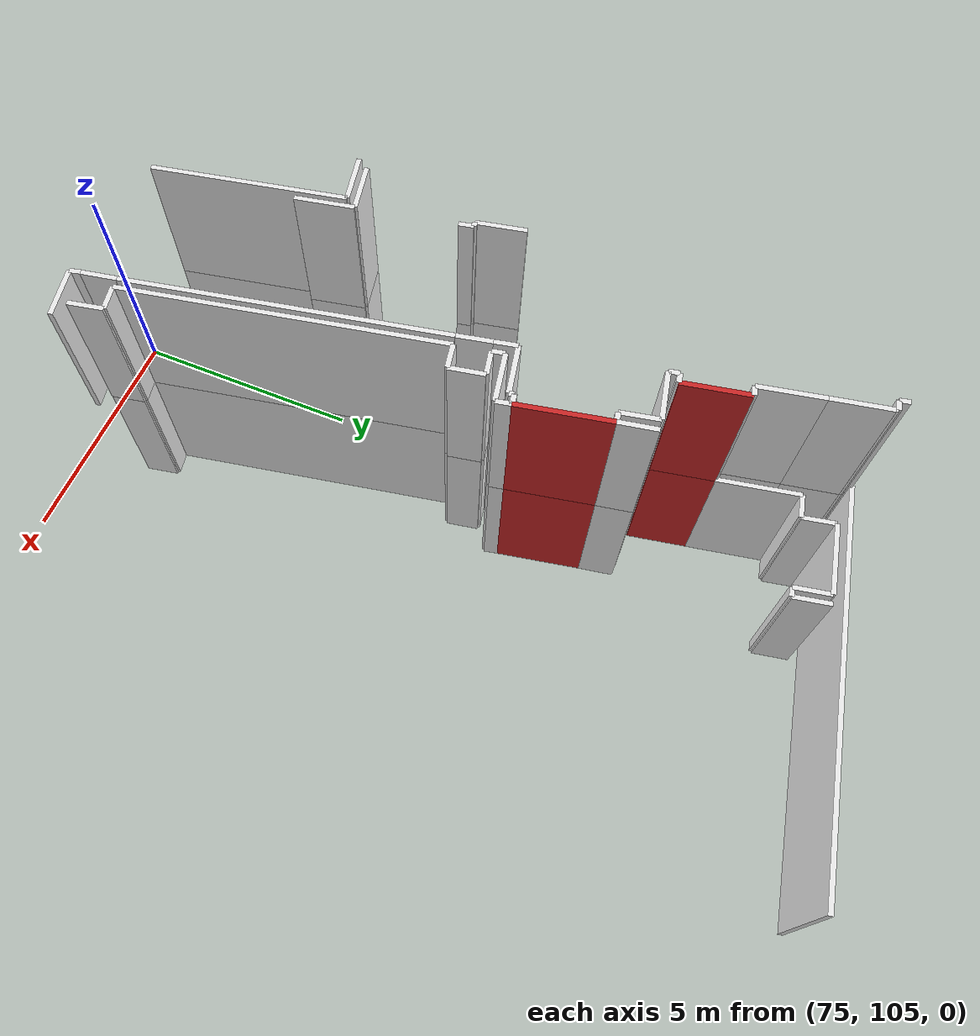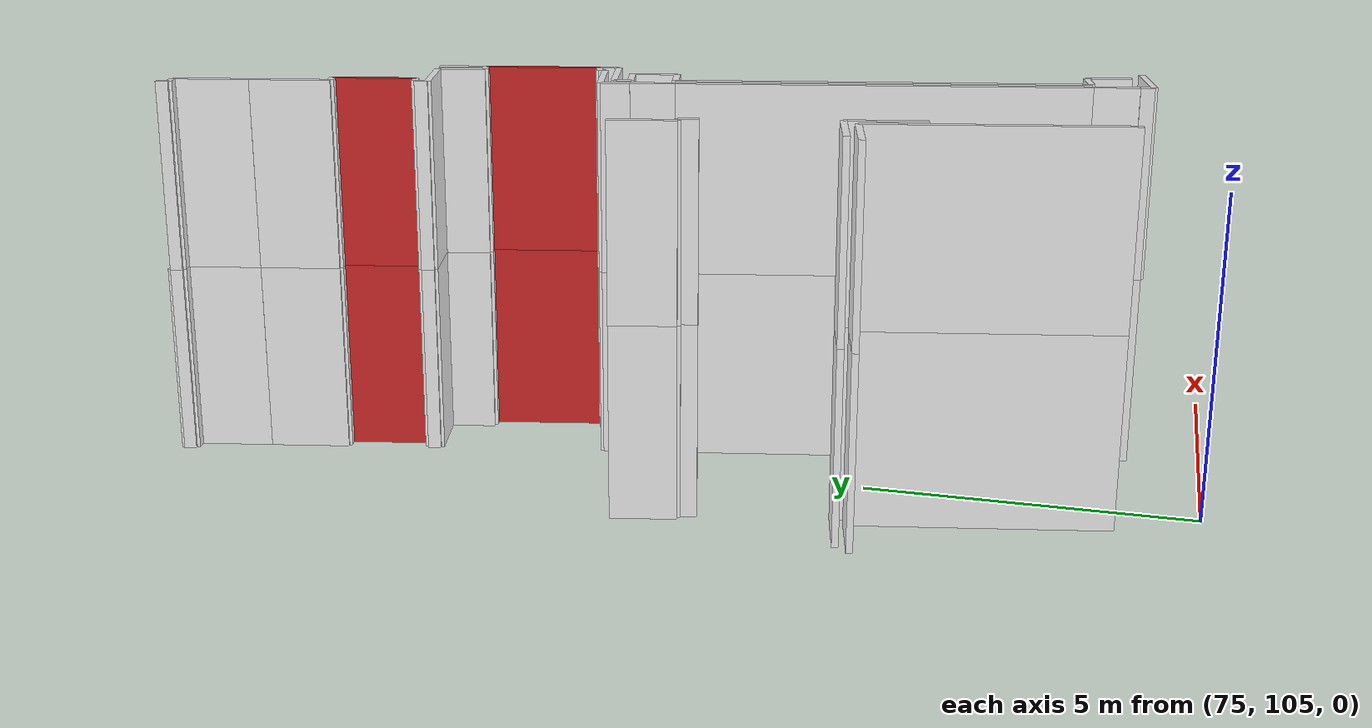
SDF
<sdf version="1.6">
 <world name="default">
  <model name="wall_76.5_115.5_1.5">
   <static>true</static>
   <pose>76.53999999997905 115.50500000012107 1.5 0 0 -1.3701434494846443</pose>
   <link name="link">
    <visual name="visual">
     <geometry><box><size>1.8062391868343128 0.1 3</size></box></geometry>
     <material>
      <script><uri>file://media/materials/scripts/gazebo.material</uri><name>Gazebo/Red</name></script>
     </material>
    </visual>
    <collision name="collision"><geometry><box><size>1.8062391868343128 0.1 3</size></box></geometry></collision>
   </link>
  </model>
  <model name="wall_75.1_117.8_1.5">
   <static>true</static>
   <pose>75.06500000000233 117.75500000012107 1.5 0 0 -1.376431060702658</pose>
   <link name="link">
    <visual name="visual">
     <geometry><box><size>1.2943724348298333 0.1 3</size></box></geometry>
     <material>
      <script><uri>file://media/materials/scripts/gazebo.material</uri><name>Gazebo/Red</name></script>
     </material>
    </visual>
    <collision name="collision"><geometry><box><size>1.2943724348298333 0.1 3</size></box></geometry></collision>
   </link>
  </model>
  <model name="wall_76.5_115.5_4.5">
   <static>true</static>
   <pose>76.53999999997905 115.50500000012107 4.5 0 0 -1.3701434494846443</pose>
   <link name="link">
    <visual name="visual">
     <geometry><box><size>1.8062391868343128 0.1 3</size></box></geometry>
     <material>
      <script><uri>file://media/materials/scripts/gazebo.material</uri><name>Gazebo/Red</name></script>
     </material>
    </visual>
    <collision name="collision"><geometry><box><size>1.8062391868343128 0.1 3</size></box></geometry></collision>
   </link>
  </model>
  <model name="wall_75.1_117.8_4.5">
   <static>true</static>
   <pose>75.06500000000233 117.75500000012107 4.5 0 0 -1.376431060702658</pose>
   <link name="link">
    <visual name="visual">
     <geometry><box><size>1.2943724348298333 0.1 3</size></box></geometry>
     <material>
      <script><uri>file://media/materials/scripts/gazebo.material</uri><name>Gazebo/Red</name></script>
     </material>
    </visual>
    <collision name="collision"><geometry><box><size>1.2943724348298333 0.1 3</size></box></geometry></collision>
   </link>
  </model>
  <model name="wall_74.0_108.2_1.5">
   <static>true</static>
   <pose>74.02999999999884 108.15500000002794 1.5 0 0 1.7676870911146996</pose>
   <link name="link">
    <visual name="visual">
     <geometry><box><size>3.8850611321253985 0.1 3</size></box></geometry>
     <material>
      <script><uri>file://media/materials/scripts/gazebo.material</uri><name>Gazebo/White</name></script>
     </material>
    </visual>
    <collision name="collision"><geometry><box><size>3.8850611321253985 0.1 3</size></box></geometry></collision>
   </link>
  </model>
  <model name="wall_73.2_110.0_1.5">
   <static>true</static>
   <pose>73.16000000000349 109.95999999996275 1.5 0 0 -2.9402755450405995</pose>
   <link name="link">
    <visual name="visual">
     <geometry><box><size>1.0001999800800263 0.1 3</size></box></geometry>
     <material>
      <script><uri>file://media/materials/scripts/gazebo.material</uri><name>Gazebo/White</name></script>
     </material>
    </visual>
    <collision name="collision"><geometry><box><size>1.0001999800800263 0.1 3</size></box></geometry></collision>
   </link>
  </model>
  <model name="wall_76.8_114.5_1.5">
   <static>true</static>
   <pose>76.75 114.47500000009313 1.5 0 0 -1.3667783470430568</pose>
   <link name="link">
    <visual name="visual">
     <geometry><box><size>0.2961418579470187 0.1 3</size></box></geometry>
     <material>
      <script><uri>file://media/materials/scripts/gazebo.material</uri><name>Gazebo/White</name></script>
     </material>
    </visual>
    <collision name="collision"><geometry><box><size>0.2961418579470187 0.1 3</size></box></geometry></collision>
   </link>
  </model>
  <model name="wall_76.3_114.2_1.5">
   <static>true</static>
   <pose>76.28500000000349 114.23500000010245 1.5 0 0 -2.9519790378789845</pose>
   <link name="link">
    <visual name="visual">
     <geometry><box><size>1.0080674580977094 0.1 3</size></box></geometry>
     <material>
      <script><uri>file://media/materials/scripts/gazebo.material</uri><name>Gazebo/White</name></script>
     </material>
    </visual>
    <collision name="collision"><geometry><box><size>1.0080674580977094 0.1 3</size></box></geometry></collision>
   </link>
  </model>
  <model name="wall_75.8_114.0_1.5">
   <static>true</static>
   <pose>75.81500000000233 114.01500000013039 1.5 0 0 -1.3734007667659154</pose>
   <link name="link">
    <visual name="visual">
     <geometry><box><size>0.2549509756887716 0.1 3</size></box></geometry>
     <material>
      <script><uri>file://media/materials/scripts/gazebo.material</uri><name>Gazebo/White</name></script>
     </material>
    </visual>
    <collision name="collision"><geometry><box><size>0.2549509756887716 0.1 3</size></box></geometry></collision>
   </link>
  </model>
  <model name="wall_76.1_113.9_1.5">
   <static>true</static>
   <pose>76.08500000002095 113.94000000017695 1.5 0 0 0.2013171085608308</pose>
   <link name="link">
    <visual name="visual">
     <geometry><box><size>0.5000999900114971 0.1 3</size></box></geometry>
     <material>
      <script><uri>file://media/materials/scripts/gazebo.material</uri><name>Gazebo/White</name></script>
     </material>
    </visual>
    <collision name="collision"><geometry><box><size>0.5000999900114971 0.1 3</size></box></geometry></collision>
   </link>
  </model>
  <model name="wall_76.4_113.7_1.5">
   <static>true</static>
   <pose>76.39500000001863 113.6500000001397 1.5 0 0 -1.3818991459561358</pose>
   <link name="link">
    <visual name="visual">
     <geometry><box><size>0.6923149573923696 0.1 3</size></box></geometry>
     <material>
      <script><uri>file://media/materials/scripts/gazebo.material</uri><name>Gazebo/White</name></script>
     </material>
    </visual>
    <collision name="collision"><geometry><box><size>0.6923149573923696 0.1 3</size></box></geometry></collision>
   </link>
  </model>
  <model name="wall_76.2_113.3_1.5">
   <static>true</static>
   <pose>76.21499999999651 113.26500000013039 1.5 0 0 -2.9599438239016918</pose>
   <link name="link">
    <visual name="visual">
     <geometry><box><size>0.4981967483044168 0.1 3</size></box></geometry>
     <material>
      <script><uri>file://media/materials/scripts/gazebo.material</uri><name>Gazebo/White</name></script>
     </material>
    </visual>
    <collision name="collision"><geometry><box><size>0.4981967483044168 0.1 3</size></box></geometry></collision>
   </link>
  </model>
  <model name="wall_76.6_110.1_1.5">
   <static>true</static>
   <pose>76.58499999999185 110.13500000000931 1.5 0 0 -1.3740242082667369</pose>
   <link name="link">
    <visual name="visual">
     <geometry><box><size>6.291406838293342 0.1 3</size></box></geometry>
     <material>
      <script><uri>file://media/materials/scripts/gazebo.material</uri><name>Gazebo/White</name></script>
     </material>
    </visual>
    <collision name="collision"><geometry><box><size>6.291406838293342 0.1 3</size></box></geometry></collision>
   </link>
  </model>
  <model name="wall_77.4_107.1_1.5">
   <static>true</static>
   <pose>77.44500000000698 107.0999999998603 1.5 0 0 0.2013171085608308</pose>
   <link name="link">
    <visual name="visual">
     <geometry><box><size>0.5000999900114971 0.1 3</size></box></geometry>
     <material>
      <script><uri>file://media/materials/scripts/gazebo.material</uri><name>Gazebo/White</name></script>
     </material>
    </visual>
    <collision name="collision"><geometry><box><size>0.5000999900114971 0.1 3</size></box></geometry></collision>
   </link>
  </model>
  <model name="wall_77.8_106.8_1.5">
   <static>true</static>
   <pose>77.76000000000931 106.81000000005588 1.5 0 0 -1.3677511094351602</pose>
   <link name="link">
    <visual name="visual">
     <geometry><box><size>0.6942621980193073 0.1 3</size></box></geometry>
     <material>
      <script><uri>file://media/materials/scripts/gazebo.material</uri><name>Gazebo/White</name></script>
     </material>
    </visual>
    <collision name="collision"><geometry><box><size>0.6942621980193073 0.1 3</size></box></geometry></collision>
   </link>
  </model>
  <model name="wall_76.3_116.8_1.5">
   <static>true</static>
   <pose>76.28999999997905 116.75500000012107 1.5 0 0 -1.3813161688905715</pose>
   <link name="link">
    <visual name="visual">
     <geometry><box><size>0.7433034373502634 0.1 3</size></box></geometry>
     <material>
      <script><uri>file://media/materials/scripts/gazebo.material</uri><name>Gazebo/White</name></script>
     </material>
    </visual>
    <collision name="collision"><geometry><box><size>0.7433034373502634 0.1 3</size></box></geometry></collision>
   </link>
  </model>
  <model name="wall_76.5_120.8_1.5">
   <static>true</static>
   <pose>76.51500000001397 120.75499999988824 1.5 0 0 -1.3734007669151658</pose>
   <link name="link">
    <visual name="visual">
     <geometry><box><size>0.764852927043484 0.1 3</size></box></geometry>
     <material>
      <script><uri>file://media/materials/scripts/gazebo.material</uri><name>Gazebo/White</name></script>
     </material>
    </visual>
    <collision name="collision"><geometry><box><size>0.764852927043484 0.1 3</size></box></geometry></collision>
   </link>
  </model>
  <model name="wall_76.7_120.4_1.5">
   <static>true</static>
   <pose>76.68500000002678 120.39999999990687 1.5 0 0 0.20749622662047904</pose>
   <link name="link">
    <visual name="visual">
     <geometry><box><size>0.19416487839942884 0.1 3</size></box></geometry>
     <material>
      <script><uri>file://media/materials/scripts/gazebo.material</uri><name>Gazebo/White</name></script>
     </material>
    </visual>
    <collision name="collision"><geometry><box><size>0.19416487839942884 0.1 3</size></box></geometry></collision>
   </link>
  </model>
  <model name="wall_76.7_120.8_1.5">
   <static>true</static>
   <pose>76.7050000000163 120.7949999999255 1.5 0 0 1.7681918866746276</pose>
   <link name="link">
    <visual name="visual">
     <geometry><box><size>0.764852927043484 0.1 3</size></box></geometry>
     <material>
      <script><uri>file://media/materials/scripts/gazebo.material</uri><name>Gazebo/White</name></script>
     </material>
    </visual>
    <collision name="collision"><geometry><box><size>0.764852927043484 0.1 3</size></box></geometry></collision>
   </link>
  </model>
  <model name="wall_74.8_119.2_1.5">
   <static>true</static>
   <pose>74.77499999999418 119.22500000009313 1.5 0 0 1.7658877432748503</pose>
   <link name="link">
    <visual name="visual">
     <geometry><box><size>1.7022925717284638 0.1 3</size></box></geometry>
     <material>
      <script><uri>file://media/materials/scripts/gazebo.material</uri><name>Gazebo/White</name></script>
     </material>
    </visual>
    <collision name="collision"><geometry><box><size>1.7022925717284638 0.1 3</size></box></geometry></collision>
   </link>
  </model>
  <model name="wall_74.9_120.1_1.5">
   <static>true</static>
   <pose>74.85499999998137 120.11000000010245 1.5 0 0 0.2013171085608308</pose>
   <link name="link">
    <visual name="visual">
     <geometry><box><size>0.5000999900114971 0.1 3</size></box></geometry>
     <material>
      <script><uri>file://media/materials/scripts/gazebo.material</uri><name>Gazebo/White</name></script>
     </material>
    </visual>
    <collision name="collision"><geometry><box><size>0.5000999900114971 0.1 3</size></box></geometry></collision>
   </link>
  </model>
  <model name="wall_75.0_120.5_1.5">
   <static>true</static>
   <pose>75.02999999999884 120.5 1.5 0 0 1.7738415440725144</pose>
   <link name="link">
    <visual name="visual">
     <geometry><box><size>0.6942621980075696 0.1 3</size></box></geometry>
     <material>
      <script><uri>file://media/materials/scripts/gazebo.material</uri><name>Gazebo/White</name></script>
     </material>
    </visual>
    <collision name="collision"><geometry><box><size>0.6942621980075696 0.1 3</size></box></geometry></collision>
   </link>
  </model>
  <model name="wall_75.7_121.0_1.5">
   <static>true</static>
   <pose>75.70000000001164 120.98499999986961 1.5 0 0 0.19349440931601616</pose>
   <link name="link">
    <visual name="visual">
     <geometry><box><size>1.508144555394632 0.1 3</size></box></geometry>
     <material>
      <script><uri>file://media/materials/scripts/gazebo.material</uri><name>Gazebo/White</name></script>
     </material>
    </visual>
    <collision name="collision"><geometry><box><size>1.508144555394632 0.1 3</size></box></geometry></collision>
   </link>
  </model>
  <model name="wall_73.9_109.7_1.5">
   <static>true</static>
   <pose>73.91500000000815 109.70999999996275 1.5 0 0 1.7665335133806872</pose>
   <link name="link">
    <visual name="visual">
     <geometry><box><size>1.1825819212062707 0.1 3</size></box></geometry>
     <material>
      <script><uri>file://media/materials/scripts/gazebo.material</uri><name>Gazebo/White</name></script>
     </material>
    </visual>
    <collision name="collision"><geometry><box><size>1.1825819212062707 0.1 3</size></box></geometry></collision>
   </link>
  </model>
  <model name="wall_73.3_110.2_1.5">
   <static>true</static>
   <pose>73.30999999999767 110.18999999994412 1.5 0 0 -2.9402755450289626</pose>
   <link name="link">
    <visual name="visual">
     <geometry><box><size>1.0001999800229942 0.1 3</size></box></geometry>
     <material>
      <script><uri>file://media/materials/scripts/gazebo.material</uri><name>Gazebo/White</name></script>
     </material>
    </visual>
    <collision name="collision"><geometry><box><size>1.0001999800229942 0.1 3</size></box></geometry></collision>
   </link>
  </model>
  <model name="wall_73.4_112.4_1.5">
   <static>true</static>
   <pose>73.37999999997555 112.39500000001863 1.5 0 0 1.7748143063542596</pose>
   <link name="link">
    <visual name="visual">
     <geometry><box><size>0.2961418579352255 0.1 3</size></box></geometry>
     <material>
      <script><uri>file://media/materials/scripts/gazebo.material</uri><name>Gazebo/White</name></script>
     </material>
    </visual>
    <collision name="collision"><geometry><box><size>0.2961418579352255 0.1 3</size></box></geometry></collision>
   </link>
  </model>
  <model name="wall_73.3_112.5_1.5">
   <static>true</static>
   <pose>73.30499999999302 112.53000000002794 1.5 0 0 -2.922923707441933</pose>
   <link name="link">
    <visual name="visual">
     <geometry><box><size>0.09219544454514944 0.1 3</size></box></geometry>
     <material>
      <script><uri>file://media/materials/scripts/gazebo.material</uri><name>Gazebo/White</name></script>
     </material>
    </visual>
    <collision name="collision"><geometry><box><size>0.09219544454514944 0.1 3</size></box></geometry></collision>
   </link>
  </model>
  <model name="wall_73.2_113.0_1.5">
   <static>true</static>
   <pose>73.16000000000349 113.01000000000931 1.5 0 0 1.7721134351846652</pose>
   <link name="link">
    <visual name="visual">
     <geometry><box><size>1.0001999799880765 0.1 3</size></box></geometry>
     <material>
      <script><uri>file://media/materials/scripts/gazebo.material</uri><name>Gazebo/White</name></script>
     </material>
    </visual>
    <collision name="collision"><geometry><box><size>1.0001999799880765 0.1 3</size></box></geometry></collision>
   </link>
  </model>
  <model name="wall_74.2_120.7_1.5">
   <static>true</static>
   <pose>74.1700000000128 120.72500000009313 1.5 0 0 0.14888994887611873</pose>
   <link name="link">
    <visual name="visual">
     <geometry><box><size>0.20223748421176238 0.1 3</size></box></geometry>
     <material>
      <script><uri>file://media/materials/scripts/gazebo.material</uri><name>Gazebo/White</name></script>
     </material>
    </visual>
    <collision name="collision"><geometry><box><size>0.20223748421176238 0.1 3</size></box></geometry></collision>
   </link>
  </model>
  <model name="wall_74.3_120.7_1.5">
   <static>true</static>
   <pose>74.27500000002328 120.72000000020489 1.5 0 0 -1.3258176636680326</pose>
   <link name="link">
    <visual name="visual">
     <geometry><box><size>0.04123105629457602 0.1 3</size></box></geometry>
     <material>
      <script><uri>file://media/materials/scripts/gazebo.material</uri><name>Gazebo/White</name></script>
     </material>
    </visual>
    <collision name="collision"><geometry><box><size>0.04123105629457602 0.1 3</size></box></geometry></collision>
   </link>
  </model>
  <model name="wall_74.4_120.1_1.5">
   <static>true</static>
   <pose>74.39000000001397 120.14000000013039 1.5 0 0 -1.3768371795778953</pose>
   <link name="link">
    <visual name="visual">
     <geometry><box><size>1.1414026459746998 0.1 3</size></box></geometry>
     <material>
      <script><uri>file://media/materials/scripts/gazebo.material</uri><name>Gazebo/White</name></script>
     </material>
    </visual>
    <collision name="collision"><geometry><box><size>1.1414026459746998 0.1 3</size></box></geometry></collision>
   </link>
  </model>
  <model name="wall_74.6_119.0_1.5">
   <static>true</static>
   <pose>74.625 118.96500000008382 1.5 0 0 -1.3702757771145264</pose>
   <link name="link">
    <visual name="visual">
     <geometry><box><size>1.2551493934803852 0.1 3</size></box></geometry>
     <material>
      <script><uri>file://media/materials/scripts/gazebo.material</uri><name>Gazebo/White</name></script>
     </material>
    </visual>
    <collision name="collision"><geometry><box><size>1.2551493934803852 0.1 3</size></box></geometry></collision>
   </link>
  </model>
  <model name="wall_74.8_118.4_1.5">
   <static>true</static>
   <pose>74.84500000000116 118.37000000011176 1.5 0 0 0.20749622662047904</pose>
   <link name="link">
    <visual name="visual">
     <geometry><box><size>0.19416487839942884 0.1 3</size></box></geometry>
     <material>
      <script><uri>file://media/materials/scripts/gazebo.material</uri><name>Gazebo/White</name></script>
     </material>
    </visual>
    <collision name="collision"><geometry><box><size>0.19416487839942884 0.1 3</size></box></geometry></collision>
   </link>
  </model>
  <model name="wall_75.1_117.1_1.5">
   <static>true</static>
   <pose>75.09500000000116 117.10000000009313 1.5 0 0 -2.9340964269693144</pose>
   <link name="link">
    <visual name="visual">
     <geometry><box><size>0.19416487839942884 0.1 3</size></box></geometry>
     <material>
      <script><uri>file://media/materials/scripts/gazebo.material</uri><name>Gazebo/White</name></script>
     </material>
    </visual>
    <collision name="collision"><geometry><box><size>0.19416487839942884 0.1 3</size></box></geometry></collision>
   </link>
  </model>
  <model name="wall_75.0_117.0_1.5">
   <static>true</static>
   <pose>75.01999999998952 116.97999999998137 1.5 0 0 -1.3734007672248605</pose>
   <link name="link">
    <visual name="visual">
     <geometry><box><size>0.2039607807222492 0.1 3</size></box></geometry>
     <material>
      <script><uri>file://media/materials/scripts/gazebo.material</uri><name>Gazebo/White</name></script>
     </material>
    </visual>
    <collision name="collision"><geometry><box><size>0.2039607807222492 0.1 3</size></box></geometry></collision>
   </link>
  </model>
  <model name="wall_75.5_117.0_1.5">
   <static>true</static>
   <pose>75.52999999999884 116.97999999998137 1.5 0 0 0.20131710854919393</pose>
   <link name="link">
    <visual name="visual">
     <geometry><box><size>1.0001999800800263 0.1 3</size></box></geometry>
     <material>
      <script><uri>file://media/materials/scripts/gazebo.material</uri><name>Gazebo/White</name></script>
     </material>
    </visual>
    <collision name="collision"><geometry><box><size>1.0001999800800263 0.1 3</size></box></geometry></collision>
   </link>
  </model>
  <model name="wall_76.1_116.7_1.5">
   <static>true</static>
   <pose>76.09500000000116 116.71500000008382 1.5 0 0 -1.3681376576882938</pose>
   <link name="link">
    <visual name="visual">
     <geometry><box><size>0.7452516353301937 0.1 3</size></box></geometry>
     <material>
      <script><uri>file://media/materials/scripts/gazebo.material</uri><name>Gazebo/White</name></script>
     </material>
    </visual>
    <collision name="collision"><geometry><box><size>0.7452516353301937 0.1 3</size></box></geometry></collision>
   </link>
  </model>
  <model name="wall_76.3_116.4_1.5">
   <static>true</static>
   <pose>76.26499999998487 116.37000000011176 1.5 0 0 0.20749622662047904</pose>
   <link name="link">
    <visual name="visual">
     <geometry><box><size>0.19416487839942884 0.1 3</size></box></geometry>
     <material>
      <script><uri>file://media/materials/scripts/gazebo.material</uri><name>Gazebo/White</name></script>
     </material>
    </visual>
    <collision name="collision"><geometry><box><size>0.19416487839942884 0.1 3</size></box></geometry></collision>
   </link>
  </model>
  <model name="wall_76.6_114.6_1.5">
   <static>true</static>
   <pose>76.61999999999534 114.60499999998137 1.5 0 0 -2.9927027046709793</pose>
   <link name="link">
    <visual name="visual">
     <geometry><box><size>0.20223748415419868 0.1 3</size></box></geometry>
     <material>
      <script><uri>file://media/materials/scripts/gazebo.material</uri><name>Gazebo/White</name></script>
     </material>
    </visual>
    <collision name="collision"><geometry><box><size>0.20223748415419868 0.1 3</size></box></geometry></collision>
   </link>
  </model>
  <model name="wall_76.5_114.5_1.5">
   <static>true</static>
   <pose>76.52999999999884 114.54000000003725 1.5 0 0 -1.3734007666092025</pose>
   <link name="link">
    <visual name="visual">
     <geometry><box><size>0.10198038989879842 0.1 3</size></box></geometry>
     <material>
      <script><uri>file://media/materials/scripts/gazebo.material</uri><name>Gazebo/White</name></script>
     </material>
    </visual>
    <collision name="collision"><geometry><box><size>0.10198038989879842 0.1 3</size></box></geometry></collision>
   </link>
  </model>
  <model name="wall_76.0_114.4_1.5">
   <static>true</static>
   <pose>76.0449999999837 114.39000000013039 1.5 0 0 -2.942255348424875</pose>
   <link name="link">
    <visual name="visual">
     <geometry><box><size>1.0100000000277551 0.1 3</size></box></geometry>
     <material>
      <script><uri>file://media/materials/scripts/gazebo.material</uri><name>Gazebo/White</name></script>
     </material>
    </visual>
    <collision name="collision"><geometry><box><size>1.0100000000277551 0.1 3</size></box></geometry></collision>
   </link>
  </model>
  <model name="wall_75.6_114.1_1.5">
   <static>true</static>
   <pose>75.59500000000116 114.07000000006519 1.5 0 0 -1.3690339823938056</pose>
   <link name="link">
    <visual name="visual">
     <geometry><box><size>0.44911023140809897 0.1 3</size></box></geometry>
     <material>
      <script><uri>file://media/materials/scripts/gazebo.material</uri><name>Gazebo/White</name></script>
     </material>
    </visual>
    <collision name="collision"><geometry><box><size>0.44911023140809897 0.1 3</size></box></geometry></collision>
   </link>
  </model>
  <model name="wall_75.7_113.5_1.5">
   <static>true</static>
   <pose>75.71000000002095 113.51500000013039 1.5 0 0 -1.3648049900768227</pose>
   <link name="link">
    <visual name="visual">
     <geometry><box><size>0.6844705982758308 0.1 3</size></box></geometry>
     <material>
      <script><uri>file://media/materials/scripts/gazebo.material</uri><name>Gazebo/White</name></script>
     </material>
    </visual>
    <collision name="collision"><geometry><box><size>0.6844705982758308 0.1 3</size></box></geometry></collision>
   </link>
  </model>
  <model name="wall_76.4_110.1_1.5">
   <static>true</static>
   <pose>76.39500000001863 110.10000000009313 1.5 0 0 -1.3737129742480756</pose>
   <link name="link">
    <visual name="visual">
     <geometry><box><size>6.281600114762957 0.1 3</size></box></geometry>
     <material>
      <script><uri>file://media/materials/scripts/gazebo.material</uri><name>Gazebo/White</name></script>
     </material>
    </visual>
    <collision name="collision"><geometry><box><size>6.281600114762957 0.1 3</size></box></geometry></collision>
   </link>
  </model>
  <model name="wall_77.1_106.7_1.5">
   <static>true</static>
   <pose>77.07500000001164 106.67999999993481 1.5 0 0 -1.3818991459561358</pose>
   <link name="link">
    <visual name="visual">
     <geometry><box><size>0.6923149573923696 0.1 3</size></box></geometry>
     <material>
      <script><uri>file://media/materials/scripts/gazebo.material</uri><name>Gazebo/White</name></script>
     </material>
    </visual>
    <collision name="collision"><geometry><box><size>0.6923149573923696 0.1 3</size></box></geometry></collision>
   </link>
  </model>
  <model name="wall_77.2_106.2_1.5">
   <static>true</static>
   <pose>77.16500000000815 106.23499999986961 1.5 0 0 -1.337053145938486</pose>
   <link name="link">
    <visual name="visual">
     <geometry><box><size>0.21587033141029277 0.1 3</size></box></geometry>
     <material>
      <script><uri>file://media/materials/scripts/gazebo.material</uri><name>Gazebo/White</name></script>
     </material>
    </visual>
    <collision name="collision"><geometry><box><size>0.21587033141029277 0.1 3</size></box></geometry></collision>
   </link>
  </model>
  <model name="wall_78.0_121.7_1.5">
   <static>true</static>
   <pose>78.03500000000349 121.68999999994412 1.5 0 0 -2.9468394128265745</pose>
   <link name="link">
    <visual name="visual">
     <geometry><box><size>8.164343206863132 0.1 3</size></box></geometry>
     <material>
      <script><uri>file://media/materials/scripts/gazebo.material</uri><name>Gazebo/White</name></script>
     </material>
    </visual>
    <collision name="collision"><geometry><box><size>8.164343206863132 0.1 3</size></box></geometry></collision>
   </link>
  </model>
  <model name="wall_74.1_120.8_1.5">
   <static>true</static>
   <pose>74.05000000001746 120.80499999993481 1.5 0 0 -1.363300100406013</pose>
   <link name="link">
    <visual name="visual">
     <geometry><box><size>0.19416487833047835 0.1 3</size></box></geometry>
     <material>
      <script><uri>file://media/materials/scripts/gazebo.material</uri><name>Gazebo/White</name></script>
     </material>
    </visual>
    <collision name="collision"><geometry><box><size>0.19416487833047835 0.1 3</size></box></geometry></collision>
   </link>
  </model>
  <model name="wall_74.0_108.2_4.5">
   <static>true</static>
   <pose>74.02999999999884 108.15500000002794 4.5 0 0 1.7676870911146996</pose>
   <link name="link">
    <visual name="visual">
     <geometry><box><size>3.8850611321253985 0.1 3</size></box></geometry>
     <material>
      <script><uri>file://media/materials/scripts/gazebo.material</uri><name>Gazebo/White</name></script>
     </material>
    </visual>
    <collision name="collision"><geometry><box><size>3.8850611321253985 0.1 3</size></box></geometry></collision>
   </link>
  </model>
  <model name="wall_73.2_110.0_4.5">
   <static>true</static>
   <pose>73.16000000000349 109.95999999996275 4.5 0 0 -2.9402755450405995</pose>
   <link name="link">
    <visual name="visual">
     <geometry><box><size>1.0001999800800263 0.1 3</size></box></geometry>
     <material>
      <script><uri>file://media/materials/scripts/gazebo.material</uri><name>Gazebo/White</name></script>
     </material>
    </visual>
    <collision name="collision"><geometry><box><size>1.0001999800800263 0.1 3</size></box></geometry></collision>
   </link>
  </model>
  <model name="wall_76.8_114.5_4.5">
   <static>true</static>
   <pose>76.75 114.47500000009313 4.5 0 0 -1.3667783470430568</pose>
   <link name="link">
    <visual name="visual">
     <geometry><box><size>0.2961418579470187 0.1 3</size></box></geometry>
     <material>
      <script><uri>file://media/materials/scripts/gazebo.material</uri><name>Gazebo/White</name></script>
     </material>
    </visual>
    <collision name="collision"><geometry><box><size>0.2961418579470187 0.1 3</size></box></geometry></collision>
   </link>
  </model>
  <model name="wall_76.3_114.2_4.5">
   <static>true</static>
   <pose>76.28500000000349 114.23500000010245 4.5 0 0 -2.9519790378789845</pose>
   <link name="link">
    <visual name="visual">
     <geometry><box><size>1.0080674580977094 0.1 3</size></box></geometry>
     <material>
      <script><uri>file://media/materials/scripts/gazebo.material</uri><name>Gazebo/White</name></script>
     </material>
    </visual>
    <collision name="collision"><geometry><box><size>1.0080674580977094 0.1 3</size></box></geometry></collision>
   </link>
  </model>
  <model name="wall_75.8_114.0_4.5">
   <static>true</static>
   <pose>75.81500000000233 114.01500000013039 4.5 0 0 -1.3734007667659154</pose>
   <link name="link">
    <visual name="visual">
     <geometry><box><size>0.2549509756887716 0.1 3</size></box></geometry>
     <material>
      <script><uri>file://media/materials/scripts/gazebo.material</uri><name>Gazebo/White</name></script>
     </material>
    </visual>
    <collision name="collision"><geometry><box><size>0.2549509756887716 0.1 3</size></box></geometry></collision>
   </link>
  </model>
  <model name="wall_76.1_113.9_4.5">
   <static>true</static>
   <pose>76.08500000002095 113.94000000017695 4.5 0 0 0.2013171085608308</pose>
   <link name="link">
    <visual name="visual">
     <geometry><box><size>0.5000999900114971 0.1 3</size></box></geometry>
     <material>
      <script><uri>file://media/materials/scripts/gazebo.material</uri><name>Gazebo/White</name></script>
     </material>
    </visual>
    <collision name="collision"><geometry><box><size>0.5000999900114971 0.1 3</size></box></geometry></collision>
   </link>
  </model>
  <model name="wall_76.4_113.7_4.5">
   <static>true</static>
   <pose>76.39500000001863 113.6500000001397 4.5 0 0 -1.3818991459561358</pose>
   <link name="link">
    <visual name="visual">
     <geometry><box><size>0.6923149573923696 0.1 3</size></box></geometry>
     <material>
      <script><uri>file://media/materials/scripts/gazebo.material</uri><name>Gazebo/White</name></script>
     </material>
    </visual>
    <collision name="collision"><geometry><box><size>0.6923149573923696 0.1 3</size></box></geometry></collision>
   </link>
  </model>
  <model name="wall_76.2_113.3_4.5">
   <static>true</static>
   <pose>76.21499999999651 113.26500000013039 4.5 0 0 -2.9599438239016918</pose>
   <link name="link">
    <visual name="visual">
     <geometry><box><size>0.4981967483044168 0.1 3</size></box></geometry>
     <material>
      <script><uri>file://media/materials/scripts/gazebo.material</uri><name>Gazebo/White</name></script>
     </material>
    </visual>
    <collision name="collision"><geometry><box><size>0.4981967483044168 0.1 3</size></box></geometry></collision>
   </link>
  </model>
  <model name="wall_76.6_110.1_4.5">
   <static>true</static>
   <pose>76.58499999999185 110.13500000000931 4.5 0 0 -1.3740242082667369</pose>
   <link name="link">
    <visual name="visual">
     <geometry><box><size>6.291406838293342 0.1 3</size></box></geometry>
     <material>
      <script><uri>file://media/materials/scripts/gazebo.material</uri><name>Gazebo/White</name></script>
     </material>
    </visual>
    <collision name="collision"><geometry><box><size>6.291406838293342 0.1 3</size></box></geometry></collision>
   </link>
  </model>
  <model name="wall_77.4_107.1_4.5">
   <static>true</static>
   <pose>77.44500000000698 107.0999999998603 4.5 0 0 0.2013171085608308</pose>
   <link name="link">
    <visual name="visual">
     <geometry><box><size>0.5000999900114971 0.1 3</size></box></geometry>
     <material>
      <script><uri>file://media/materials/scripts/gazebo.material</uri><name>Gazebo/White</name></script>
     </material>
    </visual>
    <collision name="collision"><geometry><box><size>0.5000999900114971 0.1 3</size></box></geometry></collision>
   </link>
  </model>
  <model name="wall_77.8_106.8_4.5">
   <static>true</static>
   <pose>77.76000000000931 106.81000000005588 4.5 0 0 -1.3677511094351602</pose>
   <link name="link">
    <visual name="visual">
     <geometry><box><size>0.6942621980193073 0.1 3</size></box></geometry>
     <material>
      <script><uri>file://media/materials/scripts/gazebo.material</uri><name>Gazebo/White</name></script>
     </material>
    </visual>
    <collision name="collision"><geometry><box><size>0.6942621980193073 0.1 3</size></box></geometry></collision>
   </link>
  </model>
  <model name="wall_76.3_116.8_4.5">
   <static>true</static>
   <pose>76.28999999997905 116.75500000012107 4.5 0 0 -1.3813161688905715</pose>
   <link name="link">
    <visual name="visual">
     <geometry><box><size>0.7433034373502634 0.1 3</size></box></geometry>
     <material>
      <script><uri>file://media/materials/scripts/gazebo.material</uri><name>Gazebo/White</name></script>
     </material>
    </visual>
    <collision name="collision"><geometry><box><size>0.7433034373502634 0.1 3</size></box></geometry></collision>
   </link>
  </model>
  <model name="wall_73.9_109.7_4.5">
   <static>true</static>
   <pose>73.91500000000815 109.70999999996275 4.5 0 0 1.7665335133806872</pose>
   <link name="link">
    <visual name="visual">
     <geometry><box><size>1.1825819212062707 0.1 3</size></box></geometry>
     <material>
      <script><uri>file://media/materials/scripts/gazebo.material</uri><name>Gazebo/White</name></script>
     </material>
    </visual>
    <collision name="collision"><geometry><box><size>1.1825819212062707 0.1 3</size></box></geometry></collision>
   </link>
  </model>
  <model name="wall_73.3_110.2_4.5">
   <static>true</static>
   <pose>73.30999999999767 110.18999999994412 4.5 0 0 -2.9402755450289626</pose>
   <link name="link">
    <visual name="visual">
     <geometry><box><size>1.0001999800229942 0.1 3</size></box></geometry>
     <material>
      <script><uri>file://media/materials/scripts/gazebo.material</uri><name>Gazebo/White</name></script>
     </material>
    </visual>
    <collision name="collision"><geometry><box><size>1.0001999800229942 0.1 3</size></box></geometry></collision>
   </link>
  </model>
  <model name="wall_73.4_112.4_4.5">
   <static>true</static>
   <pose>73.37999999997555 112.39500000001863 4.5 0 0 1.7748143063542596</pose>
   <link name="link">
    <visual name="visual">
     <geometry><box><size>0.2961418579352255 0.1 3</size></box></geometry>
     <material>
      <script><uri>file://media/materials/scripts/gazebo.material</uri><name>Gazebo/White</name></script>
     </material>
    </visual>
    <collision name="collision"><geometry><box><size>0.2961418579352255 0.1 3</size></box></geometry></collision>
   </link>
  </model>
  <model name="wall_73.3_112.5_4.5">
   <static>true</static>
   <pose>73.30499999999302 112.53000000002794 4.5 0 0 -2.922923707441933</pose>
   <link name="link">
    <visual name="visual">
     <geometry><box><size>0.09219544454514944 0.1 3</size></box></geometry>
     <material>
      <script><uri>file://media/materials/scripts/gazebo.material</uri><name>Gazebo/White</name></script>
     </material>
    </visual>
    <collision name="collision"><geometry><box><size>0.09219544454514944 0.1 3</size></box></geometry></collision>
   </link>
  </model>
  <model name="wall_73.2_113.0_4.5">
   <static>true</static>
   <pose>73.16000000000349 113.01000000000931 4.5 0 0 1.7721134351846652</pose>
   <link name="link">
    <visual name="visual">
     <geometry><box><size>1.0001999799880765 0.1 3</size></box></geometry>
     <material>
      <script><uri>file://media/materials/scripts/gazebo.material</uri><name>Gazebo/White</name></script>
     </material>
    </visual>
    <collision name="collision"><geometry><box><size>1.0001999799880765 0.1 3</size></box></geometry></collision>
   </link>
  </model>
  <model name="wall_74.2_120.7_4.5">
   <static>true</static>
   <pose>74.1700000000128 120.72500000009313 4.5 0 0 0.14888994887611873</pose>
   <link name="link">
    <visual name="visual">
     <geometry><box><size>0.20223748421176238 0.1 3</size></box></geometry>
     <material>
      <script><uri>file://media/materials/scripts/gazebo.material</uri><name>Gazebo/White</name></script>
     </material>
    </visual>
    <collision name="collision"><geometry><box><size>0.20223748421176238 0.1 3</size></box></geometry></collision>
   </link>
  </model>
  <model name="wall_74.3_120.7_4.5">
   <static>true</static>
   <pose>74.27500000002328 120.72000000020489 4.5 0 0 -1.3258176636680326</pose>
   <link name="link">
    <visual name="visual">
     <geometry><box><size>0.04123105629457602 0.1 3</size></box></geometry>
     <material>
      <script><uri>file://media/materials/scripts/gazebo.material</uri><name>Gazebo/White</name></script>
     </material>
    </visual>
    <collision name="collision"><geometry><box><size>0.04123105629457602 0.1 3</size></box></geometry></collision>
   </link>
  </model>
  <model name="wall_74.4_120.1_4.5">
   <static>true</static>
   <pose>74.39000000001397 120.14000000013039 4.5 0 0 -1.3768371795778953</pose>
   <link name="link">
    <visual name="visual">
     <geometry><box><size>1.1414026459746998 0.1 3</size></box></geometry>
     <material>
      <script><uri>file://media/materials/scripts/gazebo.material</uri><name>Gazebo/White</name></script>
     </material>
    </visual>
    <collision name="collision"><geometry><box><size>1.1414026459746998 0.1 3</size></box></geometry></collision>
   </link>
  </model>
  <model name="wall_74.6_119.0_4.5">
   <static>true</static>
   <pose>74.625 118.96500000008382 4.5 0 0 -1.3702757771145264</pose>
   <link name="link">
    <visual name="visual">
     <geometry><box><size>1.2551493934803852 0.1 3</size></box></geometry>
     <material>
      <script><uri>file://media/materials/scripts/gazebo.material</uri><name>Gazebo/White</name></script>
     </material>
    </visual>
    <collision name="collision"><geometry><box><size>1.2551493934803852 0.1 3</size></box></geometry></collision>
   </link>
  </model>
  <model name="wall_74.8_118.4_4.5">
   <static>true</static>
   <pose>74.84500000000116 118.37000000011176 4.5 0 0 0.20749622662047904</pose>
   <link name="link">
    <visual name="visual">
     <geometry><box><size>0.19416487839942884 0.1 3</size></box></geometry>
     <material>
      <script><uri>file://media/materials/scripts/gazebo.material</uri><name>Gazebo/White</name></script>
     </material>
    </visual>
    <collision name="collision"><geometry><box><size>0.19416487839942884 0.1 3</size></box></geometry></collision>
   </link>
  </model>
  <model name="wall_75.1_117.1_4.5">
   <static>true</static>
   <pose>75.09500000000116 117.10000000009313 4.5 0 0 -2.9340964269693144</pose>
   <link name="link">
    <visual name="visual">
     <geometry><box><size>0.19416487839942884 0.1 3</size></box></geometry>
     <material>
      <script><uri>file://media/materials/scripts/gazebo.material</uri><name>Gazebo/White</name></script>
     </material>
    </visual>
    <collision name="collision"><geometry><box><size>0.19416487839942884 0.1 3</size></box></geometry></collision>
   </link>
  </model>
  <model name="wall_75.0_117.0_4.5">
   <static>true</static>
   <pose>75.01999999998952 116.97999999998137 4.5 0 0 -1.3734007672248605</pose>
   <link name="link">
    <visual name="visual">
     <geometry><box><size>0.2039607807222492 0.1 3</size></box></geometry>
     <material>
      <script><uri>file://media/materials/scripts/gazebo.material</uri><name>Gazebo/White</name></script>
     </material>
    </visual>
    <collision name="collision"><geometry><box><size>0.2039607807222492 0.1 3</size></box></geometry></collision>
   </link>
  </model>
  <model name="wall_75.5_117.0_4.5">
   <static>true</static>
   <pose>75.52999999999884 116.97999999998137 4.5 0 0 0.20131710854919393</pose>
   <link name="link">
    <visual name="visual">
     <geometry><box><size>1.0001999800800263 0.1 3</size></box></geometry>
     <material>
      <script><uri>file://media/materials/scripts/gazebo.material</uri><name>Gazebo/White</name></script>
     </material>
    </visual>
    <collision name="collision"><geometry><box><size>1.0001999800800263 0.1 3</size></box></geometry></collision>
   </link>
  </model>
  <model name="wall_76.1_116.7_4.5">
   <static>true</static>
   <pose>76.09500000000116 116.71500000008382 4.5 0 0 -1.3681376576882938</pose>
   <link name="link">
    <visual name="visual">
     <geometry><box><size>0.7452516353301937 0.1 3</size></box></geometry>
     <material>
      <script><uri>file://media/materials/scripts/gazebo.material</uri><name>Gazebo/White</name></script>
     </material>
    </visual>
    <collision name="collision"><geometry><box><size>0.7452516353301937 0.1 3</size></box></geometry></collision>
   </link>
  </model>
  <model name="wall_76.3_116.4_4.5">
   <static>true</static>
   <pose>76.26499999998487 116.37000000011176 4.5 0 0 0.20749622662047904</pose>
   <link name="link">
    <visual name="visual">
     <geometry><box><size>0.19416487839942884 0.1 3</size></box></geometry>
     <material>
      <script><uri>file://media/materials/scripts/gazebo.material</uri><name>Gazebo/White</name></script>
     </material>
    </visual>
    <collision name="collision"><geometry><box><size>0.19416487839942884 0.1 3</size></box></geometry></collision>
   </link>
  </model>
  <model name="wall_76.6_114.6_4.5">
   <static>true</static>
   <pose>76.61999999999534 114.60499999998137 4.5 0 0 -2.9927027046709793</pose>
   <link name="link">
    <visual name="visual">
     <geometry><box><size>0.20223748415419868 0.1 3</size></box></geometry>
     <material>
      <script><uri>file://media/materials/scripts/gazebo.material</uri><name>Gazebo/White</name></script>
     </material>
    </visual>
    <collision name="collision"><geometry><box><size>0.20223748415419868 0.1 3</size></box></geometry></collision>
   </link>
  </model>
  <model name="wall_76.5_114.5_4.5">
   <static>true</static>
   <pose>76.52999999999884 114.54000000003725 4.5 0 0 -1.3734007666092025</pose>
   <link name="link">
    <visual name="visual">
     <geometry><box><size>0.10198038989879842 0.1 3</size></box></geometry>
     <material>
      <script><uri>file://media/materials/scripts/gazebo.material</uri><name>Gazebo/White</name></script>
     </material>
    </visual>
    <collision name="collision"><geometry><box><size>0.10198038989879842 0.1 3</size></box></geometry></collision>
   </link>
  </model>
  <model name="wall_76.0_114.4_4.5">
   <static>true</static>
   <pose>76.0449999999837 114.39000000013039 4.5 0 0 -2.942255348424875</pose>
   <link name="link">
    <visual name="visual">
     <geometry><box><size>1.0100000000277551 0.1 3</size></box></geometry>
     <material>
      <script><uri>file://media/materials/scripts/gazebo.material</uri><name>Gazebo/White</name></script>
     </material>
    </visual>
    <collision name="collision"><geometry><box><size>1.0100000000277551 0.1 3</size></box></geometry></collision>
   </link>
  </model>
  <model name="wall_75.6_114.1_4.5">
   <static>true</static>
   <pose>75.59500000000116 114.07000000006519 4.5 0 0 -1.3690339823938056</pose>
   <link name="link">
    <visual name="visual">
     <geometry><box><size>0.44911023140809897 0.1 3</size></box></geometry>
     <material>
      <script><uri>file://media/materials/scripts/gazebo.material</uri><name>Gazebo/White</name></script>
     </material>
    </visual>
    <collision name="collision"><geometry><box><size>0.44911023140809897 0.1 3</size></box></geometry></collision>
   </link>
  </model>
  <model name="wall_75.7_113.5_4.5">
   <static>true</static>
   <pose>75.71000000002095 113.51500000013039 4.5 0 0 -1.3648049900768227</pose>
   <link name="link">
    <visual name="visual">
     <geometry><box><size>0.6844705982758308 0.1 3</size></box></geometry>
     <material>
      <script><uri>file://media/materials/scripts/gazebo.material</uri><name>Gazebo/White</name></script>
     </material>
    </visual>
    <collision name="collision"><geometry><box><size>0.6844705982758308 0.1 3</size></box></geometry></collision>
   </link>
  </model>
  <model name="wall_76.4_110.1_4.5">
   <static>true</static>
   <pose>76.39500000001863 110.10000000009313 4.5 0 0 -1.3737129742480756</pose>
   <link name="link">
    <visual name="visual">
     <geometry><box><size>6.281600114762957 0.1 3</size></box></geometry>
     <material>
      <script><uri>file://media/materials/scripts/gazebo.material</uri><name>Gazebo/White</name></script>
     </material>
    </visual>
    <collision name="collision"><geometry><box><size>6.281600114762957 0.1 3</size></box></geometry></collision>
   </link>
  </model>
  <model name="wall_77.1_106.7_4.5">
   <static>true</static>
   <pose>77.07500000001164 106.67999999993481 4.5 0 0 -1.3818991459561358</pose>
   <link name="link">
    <visual name="visual">
     <geometry><box><size>0.6923149573923696 0.1 3</size></box></geometry>
     <material>
      <script><uri>file://media/materials/scripts/gazebo.material</uri><name>Gazebo/White</name></script>
     </material>
    </visual>
    <collision name="collision"><geometry><box><size>0.6923149573923696 0.1 3</size></box></geometry></collision>
   </link>
  </model>
  <model name="wall_77.2_106.2_4.5">
   <static>true</static>
   <pose>77.16500000000815 106.23499999986961 4.5 0 0 -1.337053145938486</pose>
   <link name="link">
    <visual name="visual">
     <geometry><box><size>0.21587033141029277 0.1 3</size></box></geometry>
     <material>
      <script><uri>file://media/materials/scripts/gazebo.material</uri><name>Gazebo/White</name></script>
     </material>
    </visual>
    <collision name="collision"><geometry><box><size>0.21587033141029277 0.1 3</size></box></geometry></collision>
   </link>
  </model>
  <model name="wall_77.7_106.2_4.5">
   <static>true</static>
   <pose>77.67999999999302 106.22999999998137 4.5 0 0 0.2013171085608308</pose>
   <link name="link">
    <visual name="visual">
     <geometry><box><size>1.0001999800229942 0.1 3</size></box></geometry>
     <material>
      <script><uri>file://media/materials/scripts/gazebo.material</uri><name>Gazebo/White</name></script>
     </material>
    </visual>
    <collision name="collision"><geometry><box><size>1.0001999800229942 0.1 3</size></box></geometry></collision>
   </link>
  </model>
  <model name="wall_74.1_120.8_4.5">
   <static>true</static>
   <pose>74.05000000001746 120.80499999993481 4.5 0 0 -1.363300100406013</pose>
   <link name="link">
    <visual name="visual">
     <geometry><box><size>0.19416487833047835 0.1 3</size></box></geometry>
     <material>
      <script><uri>file://media/materials/scripts/gazebo.material</uri><name>Gazebo/White</name></script>
     </material>
    </visual>
    <collision name="collision"><geometry><box><size>0.19416487833047835 0.1 3</size></box></geometry></collision>
   </link>
  </model>
 </world>
</sdf>
